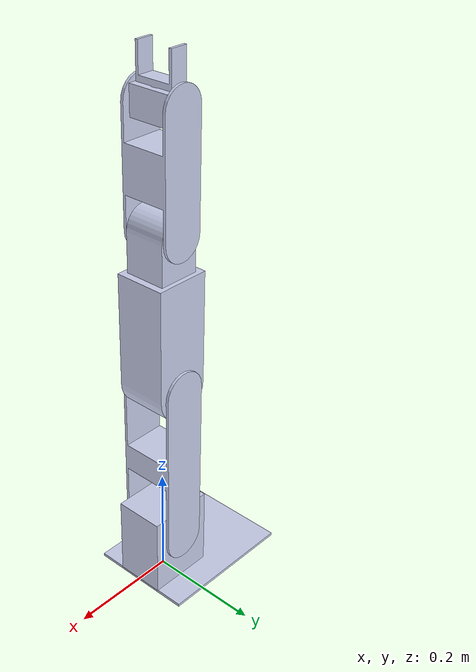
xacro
<?xml version="1.0"?>
<robot xmlns:xacro="http://www.ros.org/wiki/xacro" name="meta_arm">
    <xacro:arg name="initial_positions_file" default="initial_positions.yaml" />

    <!-- Import meta_arm urdf file -->
    <xacro:include filename="$(find meta_arm_urdf)/urdf/meta_arm.urdf" />

    <!-- Import control_xacro -->
    <!-- note: no need, since this file will be included by engineer26.xacro-->
    <xacro:include filename="meta_arm.ros2_control.xacro" />

</robot>

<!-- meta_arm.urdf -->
<robot
  name="meta_arm">
  <link
    name="base">
    <inertial>
      <origin
        xyz="-0.0742027935917747 3.05413983290649E-16 -0.0025"
        rpy="0 0 0" />
      <mass
        value="0.235462833058846" />
      <inertia
        ixx="0.000764080885007115"
        ixy="-3.24799497407441E-20"
        ixz="-8.3393971380193E-22"
        iyy="0.00132995847537163"
        iyz="4.11484004778525E-20"
        izz="0.002093058265241" />
    </inertial>
    <visual>
      <origin
        xyz="0 0 0"
        rpy="0 0 0" />
      <geometry>
        <mesh
          filename="package://meta_arm_urdf/meshes/base.STL" />
      </geometry>
      <material
        name="">
        <color
          rgba="0.792156862745098 0.819607843137255 0.933333333333333 1" />
      </material>
    </visual>
    <collision>
      <origin
        xyz="0 0 0"
        rpy="0 0 0" />
      <geometry>
        <mesh
          filename="package://meta_arm_urdf/meshes/base.STL" />
      </geometry>
    </collision>
  </link>
  <link
    name="link1">
    <inertial>
      <origin
        xyz="-1.71698563408863E-17 0.0761772305069067 1.65159673665141E-18"
        rpy="0 0 0" />
      <mass
        value="1.42471674547096" />
      <inertia
        ixx="0.0038222172238255"
        ixy="-9.01336770208009E-20"
        ixz="-2.09597168903305E-19"
        iyy="0.00300324345925799"
        iyz="3.82954102190966E-23"
        izz="0.00485119927570954" />
    </inertial>
    <visual>
      <origin
        xyz="0 0 0"
        rpy="0 0 0" />
      <geometry>
        <mesh
          filename="package://meta_arm_urdf/meshes/link1.STL" />
      </geometry>
      <material
        name="">
        <color
          rgba="0.792156862745098 0.819607843137255 0.933333333333333 1" />
      </material>
    </visual>
    <collision>
      <origin
        xyz="0 0 0"
        rpy="0 0 0" />
      <geometry>
        <mesh
          filename="package://meta_arm_urdf/meshes/link1.STL" />
      </geometry>
    </collision>
  </link>
  <joint
    name="joint1"
    type="revolute">
    <origin
      xyz="0 0 0"
      rpy="1.5708 0 0" />
    <parent
      link="base" />
    <child
      link="link1" />
    <axis
      xyz="0 1 0" />
    <limit
      lower="-3.14"
      upper="3.14"
      effort="0"
      velocity="1.0" />
  </joint>
  <link
    name="link2">
    <inertial>
      <origin
        xyz="1.38777878078145E-17 1.53705356762594E-16 -0.143599908458373"
        rpy="0 0 0" />
      <mass
        value="0.968286323314321" />
      <inertia
        ixx="0.0110201331290071"
        ixy="3.51025102103798E-19"
        ixz="-9.59070601707602E-20"
        iyy="0.0118164799173958"
        iyz="-5.17160875556214E-19"
        izz="0.0015780667423573" />
    </inertial>
    <visual>
      <origin
        xyz="0 0 0"
        rpy="0 0 0" />
      <geometry>
        <mesh
          filename="package://meta_arm_urdf/meshes/link2.STL" />
      </geometry>
      <material
        name="">
        <color
          rgba="0.792156862745098 0.819607843137255 0.933333333333333 1" />
      </material>
    </visual>
    <collision>
      <origin
        xyz="0 0 0"
        rpy="0 0 0" />
      <geometry>
        <mesh
          filename="package://meta_arm_urdf/meshes/link2.STL" />
      </geometry>
    </collision>
  </link>
  <joint
    name="joint2"
    type="revolute">
    <origin
      xyz="0 0.091 -0.00125"
      rpy="1.5708 1.5708 0" />
    <parent
      link="link1" />
    <child
      link="link2" />
    <axis
      xyz="-1 0 0" />
    <limit
      lower="-1.57"
      upper="1.57"
      effort="0"
      velocity="1.0" />
  </joint>
  <link
    name="link3">
    <inertial>
      <origin
        xyz="2.92300905702092E-16 -3.82335809788654E-15 -0.0863700260362851"
        rpy="0 0 0" />
      <mass
        value="2.11753537856957" />
      <inertia
        ixx="0.0120846819022611"
        ixy="-1.89134746684708E-20"
        ixz="3.30740074777038E-19"
        iyy="0.0118023140266831"
        iyz="-1.09452796852544E-16"
        izz="0.00328785684849757" />
    </inertial>
    <visual>
      <origin
        xyz="0 0 0"
        rpy="0 0 0" />
      <geometry>
        <mesh
          filename="package://meta_arm_urdf/meshes/link3.STL" />
      </geometry>
      <material
        name="">
        <color
          rgba="0.792156862745098 0.819607843137255 0.933333333333333 1" />
      </material>
    </visual>
    <collision>
      <origin
        xyz="0 0 0"
        rpy="0 0 0" />
      <geometry>
        <mesh
          filename="package://meta_arm_urdf/meshes/link3.STL" />
      </geometry>
    </collision>
  </link>
  <joint
    name="joint3"
    type="revolute">
    <origin
      xyz="-0.00025 0 -0.31"
      rpy="0 0 3.1416" />
    <parent
      link="link2" />
    <child
      link="link3" />
    <axis
      xyz="-1 0 0" />
    <limit
      lower="-1.57"
      upper="2.5"
      effort="0"
      velocity="1.0" />
  </joint>
  <link
    name="link4">
    <inertial>
      <origin
        xyz="-2.44379169678233E-16 2.33508169941061E-15 -0.0502647297710455"
        rpy="0 0 0" />
      <mass
        value="0.521720813248572" />
      <inertia
        ixx="0.000687643338605884"
        ixy="-3.04162654961097E-20"
        ixz="4.15373224957524E-20"
        iyy="0.000696602169902333"
        iyz="3.62893330073847E-18"
        izz="0.000491817593850539" />
    </inertial>
    <visual>
      <origin
        xyz="0 0 0"
        rpy="0 0 0" />
      <geometry>
        <mesh
          filename="package://meta_arm_urdf/meshes/link4.STL" />
      </geometry>
      <material
        name="">
        <color
          rgba="0.792156862745098 0.819607843137255 0.933333333333333 1" />
      </material>
    </visual>
    <collision>
      <origin
        xyz="0 0 0"
        rpy="0 0 0" />
      <geometry>
        <mesh
          filename="package://meta_arm_urdf/meshes/link4.STL" />
      </geometry>
    </collision>
  </link>
  <joint
    name="joint4"
    type="revolute">
    <origin
      xyz="0 0 -0.205"
      rpy="0 0 0" />
    <parent
      link="link3" />
    <child
      link="link4" />
    <axis
      xyz="0 0 -1" />
    <limit
      lower="-3.14"
      upper="3.14"
      effort="0"
      velocity="1.0" />
  </joint>
  <link
    name="link5">
    <inertial>
      <origin
        xyz="-0.039 1.89927974895701E-15 -0.0983708415061231"
        rpy="0 0 0" />
      <mass
        value="0.706009175063607" />
      <inertia
        ixx="0.00201246168289551"
        ixy="6.40384401839679E-20"
        ixz="2.28641175131268E-20"
        iyy="0.00229655701968614"
        iyz="-8.94347657872299E-20"
        izz="0.000908210245201147" />
    </inertial>
    <visual>
      <origin
        xyz="0 0 0"
        rpy="0 0 0" />
      <geometry>
        <mesh
          filename="package://meta_arm_urdf/meshes/link5.STL" />
      </geometry>
      <material
        name="">
        <color
          rgba="0.792156862745098 0.819607843137255 0.933333333333333 1" />
      </material>
    </visual>
    <collision>
      <origin
        xyz="0 0 0"
        rpy="0 0 0" />
      <geometry>
        <mesh
          filename="package://meta_arm_urdf/meshes/link5.STL" />
      </geometry>
    </collision>
  </link>
  <joint
    name="joint5"
    type="revolute">
    <origin
      xyz="0.0375 0 -0.07"
      rpy="0 0 0" />
    <parent
      link="link4" />
    <child
      link="link5" />
    <axis
      xyz="-1 0 0" />
    <limit
      lower="-1.4"
      upper="1.4"
      effort="0"
      velocity="1.0" />
  </joint>
  <link
    name="link6">
    <inertial>
      <origin
        xyz="-0.0142157440945984 -2.40372790385075E-15 8.67361737988404E-19"
        rpy="0 0 0" />
      <mass
        value="0.186753319284327" />
      <inertia
        ixx="0.00013628613508953"
        ixy="1.30810752822336E-20"
        ixz="1.21928677484662E-20"
        iyy="0.000135516288656386"
        iyz="-4.46149141347757E-20"
        izz="8.03439360728914E-05" />
    </inertial>
    <visual>
      <origin
        xyz="0 0 0"
        rpy="0 0 0" />
      <geometry>
        <mesh
          filename="package://meta_arm_urdf/meshes/link6.STL" />
      </geometry>
      <material
        name="">
        <color
          rgba="0.792156862745098 0.819607843137255 0.933333333333333 1" />
      </material>
    </visual>
    <collision>
      <origin
        xyz="0 0 0"
        rpy="0 0 0" />
      <geometry>
        <mesh
          filename="package://meta_arm_urdf/meshes/link6.STL" />
      </geometry>
    </collision>
  </link>
  <joint
    name="joint6"
    type="revolute">
    <origin
      xyz="-0.039 0 -0.216"
      rpy="0 1.5708 0" />
    <parent
      link="link5" />
    <child
      link="link6" />
    <axis
      xyz="0 0 1" />
    <limit
      lower="-1.57"
      upper="1.57"
      effort="0"
      velocity="1.0" />
  </joint>
  <link
    name="claw">
    <inertial>
      <origin
        xyz="0.0279637775701443 -2.51721885916432E-15 -1.56125112837913E-17"
        rpy="0 0 0" />
      <mass
        value="0.0386507188014664" />
      <inertia
        ixx="2.72841926393243E-05"
        ixy="1.64033379407586E-21"
        ixz="-1.10954933952239E-20"
        iyy="3.69692266452374E-05"
        iyz="9.88457636474137E-21"
        izz="1.52192266452374E-05" />
    </inertial>
    <visual>
      <origin
        xyz="0 0 0"
        rpy="0 0 0" />
      <geometry>
        <mesh
          filename="package://meta_arm_urdf/meshes/claw.STL" />
      </geometry>
      <material
        name="">
        <color
          rgba="0.792156862745098 0.819607843137255 0.933333333333333 1" />
      </material>
    </visual>
    <collision>
      <origin
        xyz="0 0 0"
        rpy="0 0 0" />
      <geometry>
        <mesh
          filename="package://meta_arm_urdf/meshes/claw.STL" />
      </geometry>
    </collision>
  </link>
  <joint
    name="joint7"
    type="revolute">
    <origin
      xyz="0 0 0"
      rpy="0 0 0" />
    <parent
      link="link6" />
    <child
      link="claw" />
    <axis
      xyz="-1 0 0" />
    <limit
      lower="-3.14"
      upper="3.14"
      effort="0"
      velocity="1.0" />
  </joint>
  <!-- below is dummy shit-->
    <link name="gunmu1"/>
    <link name="gunmu2"/>
    <link name="gunmu3"/>
    <link name="gunmu4"/>
    <link name="gunmu5"/>
    <link name="gunmu6"/>
    <joint name="joint_end_eff_shooter_joint" type="revolute">
        <parent link="base" />
        <child link="gunmu1" />
        <axis xyz="-1 0 0" />
        <limit
      lower="-3.14"
      upper="3.14"
      effort="0"
      velocity="1.0" />
    </joint>
    <joint name="back_left_wheel_joint" type="revolute">
        <parent link="base" />
        <child link="gunmu2" />
        <axis xyz="-1 0 0" />
        <limit
      lower="-3.14"
      upper="3.14"
      effort="0"
      velocity="1.0" />
    </joint>
    <joint name="front_left_wheel_joint" type="revolute">
        <parent link="base" />
        <child link="gunmu3" />
        <axis xyz="-1 0 0" />
        <limit
      lower="-3.14"
      upper="3.14"
      effort="0"
      velocity="1.0" />
    </joint>
    <joint name="front_right_wheel_joint" type="revolute">
        <parent link="base" />
        <child link="gunmu4" />
        <axis xyz="-1 0 0" />
        <limit
      lower="-3.14"
      upper="3.14"
      effort="0"
      velocity="1.0" />
    </joint>
    <joint name="back_right_wheel_joint" type="revolute">
        <parent link="base" />
        <child link="gunmu5" />
        <axis xyz="-1 0 0" />
        <limit
      lower="-3.14"
      upper="3.14"
      effort="0"
      velocity="1.0" />
    </joint>
    <joint name="dummy_yaw_wheel_joint" type="revolute">
        <parent link="base" />
        <child link="gunmu6" />
        <axis xyz="-1 0 0" />
        <limit
      lower="-3.14"
      upper="3.14"
      effort="0"
      velocity="1.0" />
    </joint>
</robot>
